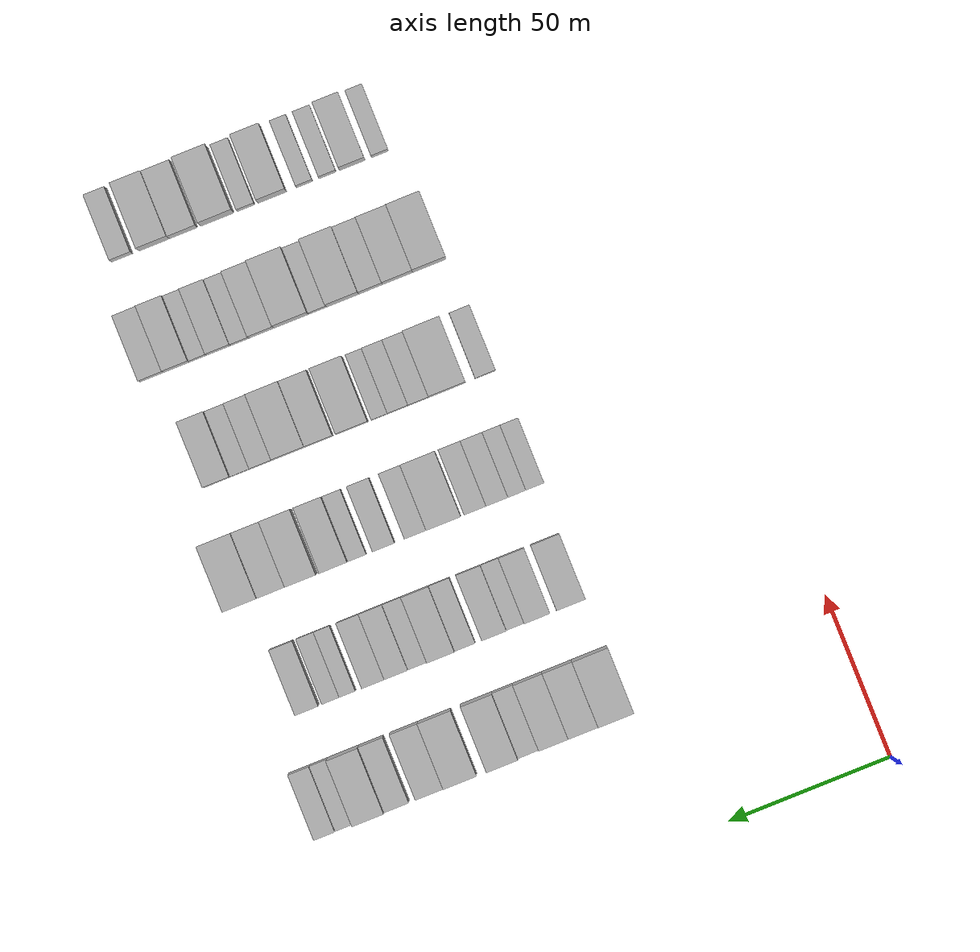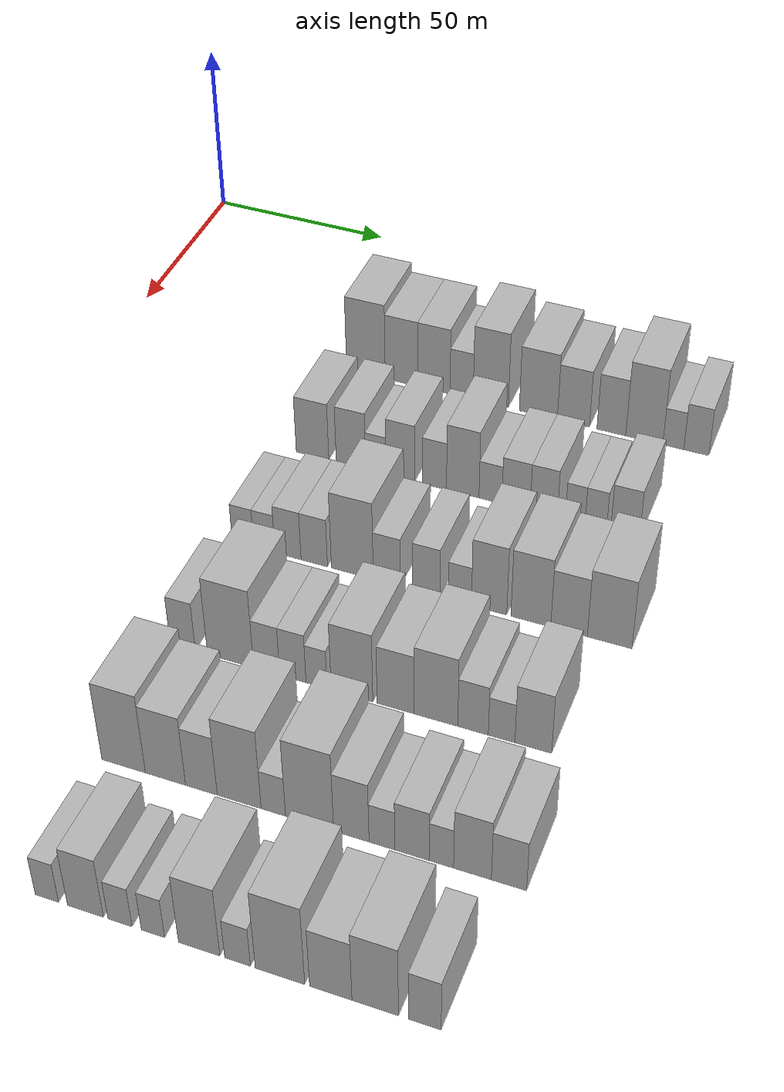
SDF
<sdf version="1.6">
 <world name="default">
  <model name="building_69">
   <static>1</static>
   <pose>50.0000 69.3415 0 0.000000 0.000000 0.000000</pose>
   <link name="link">
    <pose>0 0 12.00 0 0 0</pose>
    <collision name="collision"><geometry><box><size>20.0000 10.9557 24.0000</size></box></geometry></collision>
    <visual name="visual">
     <cast_shadows>0</cast_shadows>
     <geometry><box><size>20.0000 10.9557 24.0000</size></box></geometry>
     <material>
      <script>
       <uri>model://HANNAS_wall/materials/scripts</uri>
       <uri>model://HANNAS_wall/materials/textures</uri>
       <name>vrc/HANNAS_wall</name>
      </script>
     </material>
    </visual>
   </link>
  </model>
  <model name="building_70">
   <static>1</static>
   <pose>50.0000 79.3716 0 0.000000 0.000000 0.000000</pose>
   <link name="link">
    <pose>0 0 10.50 0 0 0</pose>
    <collision name="collision"><geometry><box><size>20.0000 9.1044 21.0000</size></box></geometry></collision>
    <visual name="visual">
     <cast_shadows>0</cast_shadows>
     <geometry><box><size>20.0000 9.1044 21.0000</size></box></geometry>
     <material>
      <script>
       <uri>model://HANNAS_wall/materials/scripts</uri>
       <uri>model://HANNAS_wall/materials/textures</uri>
       <name>vrc/HANNAS_wall</name>
      </script>
     </material>
    </visual>
   </link>
  </model>
  <model name="building_71">
   <static>1</static>
   <pose>50.0000 88.4283 0 0.000000 0.000000 0.000000</pose>
   <link name="link">
    <pose>0 0 10.50 0 0 0</pose>
    <collision name="collision"><geometry><box><size>20.0000 9.0091 21.0000</size></box></geometry></collision>
    <visual name="visual">
     <cast_shadows>0</cast_shadows>
     <geometry><box><size>20.0000 9.0091 21.0000</size></box></geometry>
     <material>
      <script>
       <uri>model://HANNAS_wall/materials/scripts</uri>
       <uri>model://HANNAS_wall/materials/textures</uri>
       <name>vrc/HANNAS_wall</name>
      </script>
     </material>
    </visual>
   </link>
  </model>
  <model name="building_72">
   <static>1</static>
   <pose>50.0000 96.1173 0 0.000000 0.000000 0.000000</pose>
   <link name="link">
    <pose>0 0 7.50 0 0 0</pose>
    <collision name="collision"><geometry><box><size>20.0000 6.3689 15.0000</size></box></geometry></collision>
    <visual name="visual">
     <cast_shadows>0</cast_shadows>
     <geometry><box><size>20.0000 6.3689 15.0000</size></box></geometry>
     <material>
      <script>
       <uri>model://HANNAS_wall/materials/scripts</uri>
       <uri>model://HANNAS_wall/materials/textures</uri>
       <name>vrc/HANNAS_wall</name>
      </script>
     </material>
    </visual>
   </link>
  </model>
  <model name="building_73">
   <static>1</static>
   <pose>50.0000 104.1100 0 0.000000 0.000000 0.000000</pose>
   <link name="link">
    <pose>0 0 12.00 0 0 0</pose>
    <collision name="collision"><geometry><box><size>20.0000 9.6165 24.0000</size></box></geometry></collision>
    <visual name="visual">
     <cast_shadows>0</cast_shadows>
     <geometry><box><size>20.0000 9.6165 24.0000</size></box></geometry>
     <material>
      <script>
       <uri>model://HANNAS_wall/materials/scripts</uri>
       <uri>model://HANNAS_wall/materials/textures</uri>
       <name>vrc/HANNAS_wall</name>
      </script>
     </material>
    </visual>
   </link>
  </model>
  <model name="building_74">
   <static>1</static>
   <pose>50.0000 117.0434 0 0.000000 0.000000 0.000000</pose>
   <link name="link">
    <pose>0 0 10.50 0 0 0</pose>
    <collision name="collision"><geometry><box><size>20.0000 10.2503 21.0000</size></box></geometry></collision>
    <visual name="visual">
     <cast_shadows>0</cast_shadows>
     <geometry><box><size>20.0000 10.2503 21.0000</size></box></geometry>
     <material>
      <script>
       <uri>model://HANNAS_wall/materials/scripts</uri>
       <uri>model://HANNAS_wall/materials/textures</uri>
       <name>vrc/HANNAS_wall</name>
      </script>
     </material>
    </visual>
   </link>
  </model>
  <model name="building_75">
   <static>1</static>
   <pose>50.0000 126.4468 0 0.000000 0.000000 0.000000</pose>
   <link name="link">
    <pose>0 0 9.00 0 0 0</pose>
    <collision name="collision"><geometry><box><size>20.0000 8.5566 18.0000</size></box></geometry></collision>
    <visual name="visual">
     <cast_shadows>0</cast_shadows>
     <geometry><box><size>20.0000 8.5566 18.0000</size></box></geometry>
     <material>
      <script>
       <uri>model://HANNAS_wall/materials/scripts</uri>
       <uri>model://HANNAS_wall/materials/textures</uri>
       <name>vrc/HANNAS_wall</name>
      </script>
     </material>
    </visual>
   </link>
  </model>
  <model name="building_76">
   <static>1</static>
   <pose>50.0000 136.5192 0 0.000000 0.000000 0.000000</pose>
   <link name="link">
    <pose>0 0 9.00 0 0 0</pose>
    <collision name="collision"><geometry><box><size>20.0000 7.5880 18.0000</size></box></geometry></collision>
    <visual name="visual">
     <cast_shadows>0</cast_shadows>
     <geometry><box><size>20.0000 7.5880 18.0000</size></box></geometry>
     <material>
      <script>
       <uri>model://HANNAS_wall/materials/scripts</uri>
       <uri>model://HANNAS_wall/materials/textures</uri>
       <name>vrc/HANNAS_wall</name>
      </script>
     </material>
    </visual>
   </link>
  </model>
  <model name="building_77">
   <static>1</static>
   <pose>50.0000 145.1539 0 0.000000 0.000000 0.000000</pose>
   <link name="link">
    <pose>0 0 12.00 0 0 0</pose>
    <collision name="collision"><geometry><box><size>20.0000 9.6815 24.0000</size></box></geometry></collision>
    <visual name="visual">
     <cast_shadows>0</cast_shadows>
     <geometry><box><size>20.0000 9.6815 24.0000</size></box></geometry>
     <material>
      <script>
       <uri>model://HANNAS_wall/materials/scripts</uri>
       <uri>model://HANNAS_wall/materials/textures</uri>
       <name>vrc/HANNAS_wall</name>
      </script>
     </material>
    </visual>
   </link>
  </model>
  <model name="building_78">
   <static>1</static>
   <pose>50.0000 152.7154 0 0.000000 0.000000 0.000000</pose>
   <link name="link">
    <pose>0 0 6.00 0 0 0</pose>
    <collision name="collision"><geometry><box><size>20.0000 5.4415 12.0000</size></box></geometry></collision>
    <visual name="visual">
     <cast_shadows>0</cast_shadows>
     <geometry><box><size>20.0000 5.4415 12.0000</size></box></geometry>
     <material>
      <script>
       <uri>model://HANNAS_wall/materials/scripts</uri>
       <uri>model://HANNAS_wall/materials/textures</uri>
       <name>vrc/HANNAS_wall</name>
      </script>
     </material>
    </visual>
   </link>
  </model>
  <model name="building_79">
   <static>1</static>
   <pose>50.0000 158.6669 0 0.000000 0.000000 0.000000</pose>
   <link name="link">
    <pose>0 0 7.50 0 0 0</pose>
    <collision name="collision"><geometry><box><size>20.0000 6.4617 15.0000</size></box></geometry></collision>
    <visual name="visual">
     <cast_shadows>0</cast_shadows>
     <geometry><box><size>20.0000 6.4617 15.0000</size></box></geometry>
     <material>
      <script>
       <uri>model://HANNAS_wall/materials/scripts</uri>
       <uri>model://HANNAS_wall/materials/textures</uri>
       <name>vrc/HANNAS_wall</name>
      </script>
     </material>
    </visual>
   </link>
  </model>
  <model name="building_188">
   <static>1</static>
   <pose>85.0000 68.9598 0 0.000000 0.000000 0.000000</pose>
   <link name="link">
    <pose>0 0 9.00 0 0 0</pose>
    <collision name="collision"><geometry><box><size>20.0000 8.8390 18.0000</size></box></geometry></collision>
    <visual name="visual">
     <cast_shadows>0</cast_shadows>
     <geometry><box><size>20.0000 8.8390 18.0000</size></box></geometry>
     <material>
      <script>
       <uri>model://HANNAS_wall/materials/scripts</uri>
       <uri>model://HANNAS_wall/materials/textures</uri>
       <name>vrc/HANNAS_wall</name>
      </script>
     </material>
    </visual>
   </link>
  </model>
  <model name="building_189">
   <static>1</static>
   <pose>85.0000 79.3357 0 0.000000 0.000000 0.000000</pose>
   <link name="link">
    <pose>0 0 9.00 0 0 0</pose>
    <collision name="collision"><geometry><box><size>20.0000 7.9128 18.0000</size></box></geometry></collision>
    <visual name="visual">
     <cast_shadows>0</cast_shadows>
     <geometry><box><size>20.0000 7.9128 18.0000</size></box></geometry>
     <material>
      <script>
       <uri>model://HANNAS_wall/materials/scripts</uri>
       <uri>model://HANNAS_wall/materials/textures</uri>
       <name>vrc/HANNAS_wall</name>
      </script>
     </material>
    </visual>
   </link>
  </model>
  <model name="building_190">
   <static>1</static>
   <pose>85.0000 86.0257 0 0.000000 0.000000 0.000000</pose>
   <link name="link">
    <pose>0 0 6.00 0 0 0</pose>
    <collision name="collision"><geometry><box><size>20.0000 5.4672 12.0000</size></box></geometry></collision>
    <visual name="visual">
     <cast_shadows>0</cast_shadows>
     <geometry><box><size>20.0000 5.4672 12.0000</size></box></geometry>
     <material>
      <script>
       <uri>model://HANNAS_wall/materials/scripts</uri>
       <uri>model://HANNAS_wall/materials/textures</uri>
       <name>vrc/HANNAS_wall</name>
      </script>
     </material>
    </visual>
   </link>
  </model>
  <model name="building_191">
   <static>1</static>
   <pose>85.0000 92.5351 0 0.000000 0.000000 0.000000</pose>
   <link name="link">
    <pose>0 0 9.00 0 0 0</pose>
    <collision name="collision"><geometry><box><size>20.0000 7.5516 18.0000</size></box></geometry></collision>
    <visual name="visual">
     <cast_shadows>0</cast_shadows>
     <geometry><box><size>20.0000 7.5516 18.0000</size></box></geometry>
     <material>
      <script>
       <uri>model://HANNAS_wall/materials/scripts</uri>
       <uri>model://HANNAS_wall/materials/textures</uri>
       <name>vrc/HANNAS_wall</name>
      </script>
     </material>
    </visual>
   </link>
  </model>
  <model name="building_192">
   <static>1</static>
   <pose>85.0000 101.4828 0 0.000000 0.000000 0.000000</pose>
   <link name="link">
    <pose>0 0 7.50 0 0 0</pose>
    <collision name="collision"><geometry><box><size>20.0000 6.3438 15.0000</size></box></geometry></collision>
    <visual name="visual">
     <cast_shadows>0</cast_shadows>
     <geometry><box><size>20.0000 6.3438 15.0000</size></box></geometry>
     <material>
      <script>
       <uri>model://HANNAS_wall/materials/scripts</uri>
       <uri>model://HANNAS_wall/materials/textures</uri>
       <name>vrc/HANNAS_wall</name>
      </script>
     </material>
    </visual>
   </link>
  </model>
  <model name="building_193">
   <static>1</static>
   <pose>85.0000 108.8783 0 0.000000 0.000000 0.000000</pose>
   <link name="link">
    <pose>0 0 10.50 0 0 0</pose>
    <collision name="collision"><geometry><box><size>20.0000 8.4472 21.0000</size></box></geometry></collision>
    <visual name="visual">
     <cast_shadows>0</cast_shadows>
     <geometry><box><size>20.0000 8.4472 21.0000</size></box></geometry>
     <material>
      <script>
       <uri>model://HANNAS_wall/materials/scripts</uri>
       <uri>model://HANNAS_wall/materials/textures</uri>
       <name>vrc/HANNAS_wall</name>
      </script>
     </material>
    </visual>
   </link>
  </model>
  <model name="building_194">
   <static>1</static>
   <pose>85.0000 116.0498 0 0.000000 0.000000 0.000000</pose>
   <link name="link">
    <pose>0 0 6.00 0 0 0</pose>
    <collision name="collision"><geometry><box><size>20.0000 5.8960 12.0000</size></box></geometry></collision>
    <visual name="visual">
     <cast_shadows>0</cast_shadows>
     <geometry><box><size>20.0000 5.8960 12.0000</size></box></geometry>
     <material>
      <script>
       <uri>model://HANNAS_wall/materials/scripts</uri>
       <uri>model://HANNAS_wall/materials/textures</uri>
       <name>vrc/HANNAS_wall</name>
      </script>
     </material>
    </visual>
   </link>
  </model>
  <model name="building_195">
   <static>1</static>
   <pose>85.0000 122.6215 0 0.000000 0.000000 0.000000</pose>
   <link name="link">
    <pose>0 0 7.50 0 0 0</pose>
    <collision name="collision"><geometry><box><size>20.0000 7.2473 15.0000</size></box></geometry></collision>
    <visual name="visual">
     <cast_shadows>0</cast_shadows>
     <geometry><box><size>20.0000 7.2473 15.0000</size></box></geometry>
     <material>
      <script>
       <uri>model://HANNAS_wall/materials/scripts</uri>
       <uri>model://HANNAS_wall/materials/textures</uri>
       <name>vrc/HANNAS_wall</name>
      </script>
     </material>
    </visual>
   </link>
  </model>
  <model name="building_196">
   <static>1</static>
   <pose>85.0000 129.6965 0 0.000000 0.000000 0.000000</pose>
   <link name="link">
    <pose>0 0 7.50 0 0 0</pose>
    <collision name="collision"><geometry><box><size>20.0000 6.9028 15.0000</size></box></geometry></collision>
    <visual name="visual">
     <cast_shadows>0</cast_shadows>
     <geometry><box><size>20.0000 6.9028 15.0000</size></box></geometry>
     <material>
      <script>
       <uri>model://HANNAS_wall/materials/scripts</uri>
       <uri>model://HANNAS_wall/materials/textures</uri>
       <name>vrc/HANNAS_wall</name>
      </script>
     </material>
    </visual>
   </link>
  </model>
  <model name="building_197">
   <static>1</static>
   <pose>85.0000 137.6259 0 0.000000 0.000000 0.000000</pose>
   <link name="link">
    <pose>0 0 6.00 0 0 0</pose>
    <collision name="collision"><geometry><box><size>20.0000 4.9561 12.0000</size></box></geometry></collision>
    <visual name="visual">
     <cast_shadows>0</cast_shadows>
     <geometry><box><size>20.0000 4.9561 12.0000</size></box></geometry>
     <material>
      <script>
       <uri>model://HANNAS_wall/materials/scripts</uri>
       <uri>model://HANNAS_wall/materials/textures</uri>
       <name>vrc/HANNAS_wall</name>
      </script>
     </material>
    </visual>
   </link>
  </model>
  <model name="building_198">
   <static>1</static>
   <pose>85.0000 142.8022 0 0.000000 0.000000 0.000000</pose>
   <link name="link">
    <pose>0 0 6.00 0 0 0</pose>
    <collision name="collision"><geometry><box><size>20.0000 5.3965 12.0000</size></box></geometry></collision>
    <visual name="visual">
     <cast_shadows>0</cast_shadows>
     <geometry><box><size>20.0000 5.3965 12.0000</size></box></geometry>
     <material>
      <script>
       <uri>model://HANNAS_wall/materials/scripts</uri>
       <uri>model://HANNAS_wall/materials/textures</uri>
       <name>vrc/HANNAS_wall</name>
      </script>
     </material>
    </visual>
   </link>
  </model>
  <model name="building_199">
   <static>1</static>
   <pose>85.0000 150.0899 0 0.000000 0.000000 0.000000</pose>
   <link name="link">
    <pose>0 0 7.50 0 0 0</pose>
    <collision name="collision"><geometry><box><size>20.0000 7.1789 15.0000</size></box></geometry></collision>
    <visual name="visual">
     <cast_shadows>0</cast_shadows>
     <geometry><box><size>20.0000 7.1789 15.0000</size></box></geometry>
     <material>
      <script>
       <uri>model://HANNAS_wall/materials/scripts</uri>
       <uri>model://HANNAS_wall/materials/textures</uri>
       <name>vrc/HANNAS_wall</name>
      </script>
     </material>
    </visual>
   </link>
  </model>
  <model name="building_320">
   <static>1</static>
   <pose>120.0000 65.9033 0 0.000000 0.000000 0.000000</pose>
   <link name="link">
    <pose>0 0 6.00 0 0 0</pose>
    <collision name="collision"><geometry><box><size>20.0000 5.6047 12.0000</size></box></geometry></collision>
    <visual name="visual">
     <cast_shadows>0</cast_shadows>
     <geometry><box><size>20.0000 5.6047 12.0000</size></box></geometry>
     <material>
      <script>
       <uri>model://HANNAS_wall/materials/scripts</uri>
       <uri>model://HANNAS_wall/materials/textures</uri>
       <name>vrc/HANNAS_wall</name>
      </script>
     </material>
    </visual>
   </link>
  </model>
  <model name="building_321">
   <static>1</static>
   <pose>120.0000 71.4473 0 0.000000 0.000000 0.000000</pose>
   <link name="link">
    <pose>0 0 6.00 0 0 0</pose>
    <collision name="collision"><geometry><box><size>20.0000 5.4833 12.0000</size></box></geometry></collision>
    <visual name="visual">
     <cast_shadows>0</cast_shadows>
     <geometry><box><size>20.0000 5.4833 12.0000</size></box></geometry>
     <material>
      <script>
       <uri>model://HANNAS_wall/materials/scripts</uri>
       <uri>model://HANNAS_wall/materials/textures</uri>
       <name>vrc/HANNAS_wall</name>
      </script>
     </material>
    </visual>
   </link>
  </model>
  <model name="building_322">
   <static>1</static>
   <pose>120.0000 77.5515 0 0.000000 0.000000 0.000000</pose>
   <link name="link">
    <pose>0 0 7.50 0 0 0</pose>
    <collision name="collision"><geometry><box><size>20.0000 6.7250 15.0000</size></box></geometry></collision>
    <visual name="visual">
     <cast_shadows>0</cast_shadows>
     <geometry><box><size>20.0000 6.7250 15.0000</size></box></geometry>
     <material>
      <script>
       <uri>model://HANNAS_wall/materials/scripts</uri>
       <uri>model://HANNAS_wall/materials/textures</uri>
       <name>vrc/HANNAS_wall</name>
      </script>
     </material>
    </visual>
   </link>
  </model>
  <model name="building_323">
   <static>1</static>
   <pose>120.0000 84.2907 0 0.000000 0.000000 0.000000</pose>
   <link name="link">
    <pose>0 0 7.50 0 0 0</pose>
    <collision name="collision"><geometry><box><size>20.0000 6.7534 15.0000</size></box></geometry></collision>
    <visual name="visual">
     <cast_shadows>0</cast_shadows>
     <geometry><box><size>20.0000 6.7534 15.0000</size></box></geometry>
     <material>
      <script>
       <uri>model://HANNAS_wall/materials/scripts</uri>
       <uri>model://HANNAS_wall/materials/textures</uri>
       <name>vrc/HANNAS_wall</name>
      </script>
     </material>
    </visual>
   </link>
  </model>
  <model name="building_324">
   <static>1</static>
   <pose>120.0000 93.9560 0 0.000000 0.000000 0.000000</pose>
   <link name="link">
    <pose>0 0 12.00 0 0 0</pose>
    <collision name="collision"><geometry><box><size>20.0000 10.5772 24.0000</size></box></geometry></collision>
    <visual name="visual">
     <cast_shadows>0</cast_shadows>
     <geometry><box><size>20.0000 10.5772 24.0000</size></box></geometry>
     <material>
      <script>
       <uri>model://HANNAS_wall/materials/scripts</uri>
       <uri>model://HANNAS_wall/materials/textures</uri>
       <name>vrc/HANNAS_wall</name>
      </script>
     </material>
    </visual>
   </link>
  </model>
  <model name="building_325">
   <static>1</static>
   <pose>120.0000 102.6236 0 0.000000 0.000000 0.000000</pose>
   <link name="link">
    <pose>0 0 7.50 0 0 0</pose>
    <collision name="collision"><geometry><box><size>20.0000 6.7579 15.0000</size></box></geometry></collision>
    <visual name="visual">
     <cast_shadows>0</cast_shadows>
     <geometry><box><size>20.0000 6.7579 15.0000</size></box></geometry>
     <material>
      <script>
       <uri>model://HANNAS_wall/materials/scripts</uri>
       <uri>model://HANNAS_wall/materials/textures</uri>
       <name>vrc/HANNAS_wall</name>
      </script>
     </material>
    </visual>
   </link>
  </model>
  <model name="building_326">
   <static>1</static>
   <pose>120.0000 112.3995 0 0.000000 0.000000 0.000000</pose>
   <link name="link">
    <pose>0 0 7.50 0 0 0</pose>
    <collision name="collision"><geometry><box><size>20.0000 6.7940 15.0000</size></box></geometry></collision>
    <visual name="visual">
     <cast_shadows>0</cast_shadows>
     <geometry><box><size>20.0000 6.7940 15.0000</size></box></geometry>
     <material>
      <script>
       <uri>model://HANNAS_wall/materials/scripts</uri>
       <uri>model://HANNAS_wall/materials/textures</uri>
       <name>vrc/HANNAS_wall</name>
      </script>
     </material>
    </visual>
   </link>
  </model>
  <model name="building_327">
   <static>1</static>
   <pose>120.0000 120.6309 0 0.000000 0.000000 0.000000</pose>
   <link name="link">
    <pose>0 0 6.00 0 0 0</pose>
    <collision name="collision"><geometry><box><size>20.0000 5.6687 12.0000</size></box></geometry></collision>
    <visual name="visual">
     <cast_shadows>0</cast_shadows>
     <geometry><box><size>20.0000 5.6687 12.0000</size></box></geometry>
     <material>
      <script>
       <uri>model://HANNAS_wall/materials/scripts</uri>
       <uri>model://HANNAS_wall/materials/textures</uri>
       <name>vrc/HANNAS_wall</name>
      </script>
     </material>
    </visual>
   </link>
  </model>
  <model name="building_328">
   <static>1</static>
   <pose>120.0000 127.7406 0 0.000000 0.000000 0.000000</pose>
   <link name="link">
    <pose>0 0 10.50 0 0 0</pose>
    <collision name="collision"><geometry><box><size>20.0000 8.5508 21.0000</size></box></geometry></collision>
    <visual name="visual">
     <cast_shadows>0</cast_shadows>
     <geometry><box><size>20.0000 8.5508 21.0000</size></box></geometry>
     <material>
      <script>
       <uri>model://HANNAS_wall/materials/scripts</uri>
       <uri>model://HANNAS_wall/materials/textures</uri>
       <name>vrc/HANNAS_wall</name>
      </script>
     </material>
    </visual>
   </link>
  </model>
  <model name="building_329">
   <static>1</static>
   <pose>120.0000 137.7846 0 0.000000 0.000000 0.000000</pose>
   <link name="link">
    <pose>0 0 10.50 0 0 0</pose>
    <collision name="collision"><geometry><box><size>20.0000 9.5372 21.0000</size></box></geometry></collision>
    <visual name="visual">
     <cast_shadows>0</cast_shadows>
     <geometry><box><size>20.0000 9.5372 21.0000</size></box></geometry>
     <material>
      <script>
       <uri>model://HANNAS_wall/materials/scripts</uri>
       <uri>model://HANNAS_wall/materials/textures</uri>
       <name>vrc/HANNAS_wall</name>
      </script>
     </material>
    </visual>
   </link>
  </model>
  <model name="building_330">
   <static>1</static>
   <pose>120.0000 146.8764 0 0.000000 0.000000 0.000000</pose>
   <link name="link">
    <pose>0 0 9.00 0 0 0</pose>
    <collision name="collision"><geometry><box><size>20.0000 8.6464 18.0000</size></box></geometry></collision>
    <visual name="visual">
     <cast_shadows>0</cast_shadows>
     <geometry><box><size>20.0000 8.6464 18.0000</size></box></geometry>
     <material>
      <script>
       <uri>model://HANNAS_wall/materials/scripts</uri>
       <uri>model://HANNAS_wall/materials/textures</uri>
       <name>vrc/HANNAS_wall</name>
      </script>
     </material>
    </visual>
   </link>
  </model>
  <model name="building_331">
   <static>1</static>
   <pose>120.0000 156.4136 0 0.000000 0.000000 0.000000</pose>
   <link name="link">
    <pose>0 0 10.50 0 0 0</pose>
    <collision name="collision"><geometry><box><size>20.0000 10.4281 21.0000</size></box></geometry></collision>
    <visual name="visual">
     <cast_shadows>0</cast_shadows>
     <geometry><box><size>20.0000 10.4281 21.0000</size></box></geometry>
     <material>
      <script>
       <uri>model://HANNAS_wall/materials/scripts</uri>
       <uri>model://HANNAS_wall/materials/textures</uri>
       <name>vrc/HANNAS_wall</name>
      </script>
     </material>
    </visual>
   </link>
  </model>
  <model name="building_438">
   <static>1</static>
   <pose>155.0000 67.1264 0 0.000000 0.000000 0.000000</pose>
   <link name="link">
    <pose>0 0 7.50 0 0 0</pose>
    <collision name="collision"><geometry><box><size>20.0000 6.2338 15.0000</size></box></geometry></collision>
    <visual name="visual">
     <cast_shadows>0</cast_shadows>
     <geometry><box><size>20.0000 6.2338 15.0000</size></box></geometry>
     <material>
      <script>
       <uri>model://HANNAS_wall/materials/scripts</uri>
       <uri>model://HANNAS_wall/materials/textures</uri>
       <name>vrc/HANNAS_wall</name>
      </script>
     </material>
    </visual>
   </link>
  </model>
  <model name="building_439">
   <static>1</static>
   <pose>155.0000 78.8919 0 0.000000 0.000000 0.000000</pose>
   <link name="link">
    <pose>0 0 12.00 0 0 0</pose>
    <collision name="collision"><geometry><box><size>20.0000 11.2971 24.0000</size></box></geometry></collision>
    <visual name="visual">
     <cast_shadows>0</cast_shadows>
     <geometry><box><size>20.0000 11.2971 24.0000</size></box></geometry>
     <material>
      <script>
       <uri>model://HANNAS_wall/materials/scripts</uri>
       <uri>model://HANNAS_wall/materials/textures</uri>
       <name>vrc/HANNAS_wall</name>
      </script>
     </material>
    </visual>
   </link>
  </model>
  <model name="building_440">
   <static>1</static>
   <pose>155.0000 87.7095 0 0.000000 0.000000 0.000000</pose>
   <link name="link">
    <pose>0 0 7.50 0 0 0</pose>
    <collision name="collision"><geometry><box><size>20.0000 6.3382 15.0000</size></box></geometry></collision>
    <visual name="visual">
     <cast_shadows>0</cast_shadows>
     <geometry><box><size>20.0000 6.3382 15.0000</size></box></geometry>
     <material>
      <script>
       <uri>model://HANNAS_wall/materials/scripts</uri>
       <uri>model://HANNAS_wall/materials/textures</uri>
       <name>vrc/HANNAS_wall</name>
      </script>
     </material>
    </visual>
   </link>
  </model>
  <model name="building_441">
   <static>1</static>
   <pose>155.0000 94.0341 0 0.000000 0.000000 0.000000</pose>
   <link name="link">
    <pose>0 0 7.50 0 0 0</pose>
    <collision name="collision"><geometry><box><size>20.0000 6.3111 15.0000</size></box></geometry></collision>
    <visual name="visual">
     <cast_shadows>0</cast_shadows>
     <geometry><box><size>20.0000 6.3111 15.0000</size></box></geometry>
     <material>
      <script>
       <uri>model://HANNAS_wall/materials/scripts</uri>
       <uri>model://HANNAS_wall/materials/textures</uri>
       <name>vrc/HANNAS_wall</name>
      </script>
     </material>
    </visual>
   </link>
  </model>
  <model name="building_442">
   <static>1</static>
   <pose>155.0000 99.6969 0 0.000000 0.000000 0.000000</pose>
   <link name="link">
    <pose>0 0 6.00 0 0 0</pose>
    <collision name="collision"><geometry><box><size>20.0000 5.0145 12.0000</size></box></geometry></collision>
    <visual name="visual">
     <cast_shadows>0</cast_shadows>
     <geometry><box><size>20.0000 5.0145 12.0000</size></box></geometry>
     <material>
      <script>
       <uri>model://HANNAS_wall/materials/scripts</uri>
       <uri>model://HANNAS_wall/materials/textures</uri>
       <name>vrc/HANNAS_wall</name>
      </script>
     </material>
    </visual>
   </link>
  </model>
  <model name="building_443">
   <static>1</static>
   <pose>155.0000 108.1194 0 0.000000 0.000000 0.000000</pose>
   <link name="link">
    <pose>0 0 10.50 0 0 0</pose>
    <collision name="collision"><geometry><box><size>20.0000 9.8305 21.0000</size></box></geometry></collision>
    <visual name="visual">
     <cast_shadows>0</cast_shadows>
     <geometry><box><size>20.0000 9.8305 21.0000</size></box></geometry>
     <material>
      <script>
       <uri>model://HANNAS_wall/materials/scripts</uri>
       <uri>model://HANNAS_wall/materials/textures</uri>
       <name>vrc/HANNAS_wall</name>
      </script>
     </material>
    </visual>
   </link>
  </model>
  <model name="building_444">
   <static>1</static>
   <pose>155.0000 118.3511 0 0.000000 0.000000 0.000000</pose>
   <link name="link">
    <pose>0 0 9.00 0 0 0</pose>
    <collision name="collision"><geometry><box><size>20.0000 8.6330 18.0000</size></box></geometry></collision>
    <visual name="visual">
     <cast_shadows>0</cast_shadows>
     <geometry><box><size>20.0000 8.6330 18.0000</size></box></geometry>
     <material>
      <script>
       <uri>model://HANNAS_wall/materials/scripts</uri>
       <uri>model://HANNAS_wall/materials/textures</uri>
       <name>vrc/HANNAS_wall</name>
      </script>
     </material>
    </visual>
   </link>
  </model>
  <model name="building_445">
   <static>1</static>
   <pose>155.0000 127.6790 0 0.000000 0.000000 0.000000</pose>
   <link name="link">
    <pose>0 0 10.50 0 0 0</pose>
    <collision name="collision"><geometry><box><size>20.0000 10.0228 21.0000</size></box></geometry></collision>
    <visual name="visual">
     <cast_shadows>0</cast_shadows>
     <geometry><box><size>20.0000 10.0228 21.0000</size></box></geometry>
     <material>
      <script>
       <uri>model://HANNAS_wall/materials/scripts</uri>
       <uri>model://HANNAS_wall/materials/textures</uri>
       <name>vrc/HANNAS_wall</name>
      </script>
     </material>
    </visual>
   </link>
  </model>
  <model name="building_446">
   <static>1</static>
   <pose>155.0000 136.1555 0 0.000000 0.000000 0.000000</pose>
   <link name="link">
    <pose>0 0 7.50 0 0 0</pose>
    <collision name="collision"><geometry><box><size>20.0000 6.9302 15.0000</size></box></geometry></collision>
    <visual name="visual">
     <cast_shadows>0</cast_shadows>
     <geometry><box><size>20.0000 6.9302 15.0000</size></box></geometry>
     <material>
      <script>
       <uri>model://HANNAS_wall/materials/scripts</uri>
       <uri>model://HANNAS_wall/materials/textures</uri>
       <name>vrc/HANNAS_wall</name>
      </script>
     </material>
    </visual>
   </link>
  </model>
  <model name="building_447">
   <static>1</static>
   <pose>155.0000 142.6181 0 0.000000 0.000000 0.000000</pose>
   <link name="link">
    <pose>0 0 6.00 0 0 0</pose>
    <collision name="collision"><geometry><box><size>20.0000 5.9949 12.0000</size></box></geometry></collision>
    <visual name="visual">
     <cast_shadows>0</cast_shadows>
     <geometry><box><size>20.0000 5.9949 12.0000</size></box></geometry>
     <material>
      <script>
       <uri>model://HANNAS_wall/materials/scripts</uri>
       <uri>model://HANNAS_wall/materials/textures</uri>
       <name>vrc/HANNAS_wall</name>
      </script>
     </material>
    </visual>
   </link>
  </model>
  <model name="building_448">
   <static>1</static>
   <pose>155.0000 149.7255 0 0.000000 0.000000 0.000000</pose>
   <link name="link">
    <pose>0 0 9.00 0 0 0</pose>
    <collision name="collision"><geometry><box><size>20.0000 8.2200 18.0000</size></box></geometry></collision>
    <visual name="visual">
     <cast_shadows>0</cast_shadows>
     <geometry><box><size>20.0000 8.2200 18.0000</size></box></geometry>
     <material>
      <script>
       <uri>model://HANNAS_wall/materials/scripts</uri>
       <uri>model://HANNAS_wall/materials/textures</uri>
       <name>vrc/HANNAS_wall</name>
      </script>
     </material>
    </visual>
   </link>
  </model>
  <model name="building_564">
   <static>1</static>
   <pose>190.0000 70.3885 0 0.000000 0.000000 0.000000</pose>
   <link name="link">
    <pose>0 0 12.00 0 0 0</pose>
    <collision name="collision"><geometry><box><size>20.0000 10.2522 24.0000</size></box></geometry></collision>
    <visual name="visual">
     <cast_shadows>0</cast_shadows>
     <geometry><box><size>20.0000 10.2522 24.0000</size></box></geometry>
     <material>
      <script>
       <uri>model://HANNAS_wall/materials/scripts</uri>
       <uri>model://HANNAS_wall/materials/textures</uri>
       <name>vrc/HANNAS_wall</name>
      </script>
     </material>
    </visual>
   </link>
  </model>
  <model name="building_565">
   <static>1</static>
   <pose>190.0000 80.1894 0 0.000000 0.000000 0.000000</pose>
   <link name="link">
    <pose>0 0 10.50 0 0 0</pose>
    <collision name="collision"><geometry><box><size>20.0000 9.3496 21.0000</size></box></geometry></collision>
    <visual name="visual">
     <cast_shadows>0</cast_shadows>
     <geometry><box><size>20.0000 9.3496 21.0000</size></box></geometry>
     <material>
      <script>
       <uri>model://HANNAS_wall/materials/scripts</uri>
       <uri>model://HANNAS_wall/materials/textures</uri>
       <name>vrc/HANNAS_wall</name>
      </script>
     </material>
    </visual>
   </link>
  </model>
  <model name="building_566">
   <static>1</static>
   <pose>190.0000 88.5115 0 0.000000 0.000000 0.000000</pose>
   <link name="link">
    <pose>0 0 9.00 0 0 0</pose>
    <collision name="collision"><geometry><box><size>20.0000 7.2944 18.0000</size></box></geometry></collision>
    <visual name="visual">
     <cast_shadows>0</cast_shadows>
     <geometry><box><size>20.0000 7.2944 18.0000</size></box></geometry>
     <material>
      <script>
       <uri>model://HANNAS_wall/materials/scripts</uri>
       <uri>model://HANNAS_wall/materials/textures</uri>
       <name>vrc/HANNAS_wall</name>
      </script>
     </material>
    </visual>
   </link>
  </model>
  <model name="building_567">
   <static>1</static>
   <pose>190.0000 97.1524 0 0.000000 0.000000 0.000000</pose>
   <link name="link">
    <pose>0 0 12.00 0 0 0</pose>
    <collision name="collision"><geometry><box><size>20.0000 9.9874 24.0000</size></box></geometry></collision>
    <visual name="visual">
     <cast_shadows>0</cast_shadows>
     <geometry><box><size>20.0000 9.9874 24.0000</size></box></geometry>
     <material>
      <script>
       <uri>model://HANNAS_wall/materials/scripts</uri>
       <uri>model://HANNAS_wall/materials/textures</uri>
       <name>vrc/HANNAS_wall</name>
      </script>
     </material>
    </visual>
   </link>
  </model>
  <model name="building_568">
   <static>1</static>
   <pose>190.0000 104.8913 0 0.000000 0.000000 0.000000</pose>
   <link name="link">
    <pose>0 0 6.00 0 0 0</pose>
    <collision name="collision"><geometry><box><size>20.0000 5.4905 12.0000</size></box></geometry></collision>
    <visual name="visual">
     <cast_shadows>0</cast_shadows>
     <geometry><box><size>20.0000 5.4905 12.0000</size></box></geometry>
     <material>
      <script>
       <uri>model://HANNAS_wall/materials/scripts</uri>
       <uri>model://HANNAS_wall/materials/textures</uri>
       <name>vrc/HANNAS_wall</name>
      </script>
     </material>
    </visual>
   </link>
  </model>
  <model name="building_569">
   <static>1</static>
   <pose>190.0000 112.9837 0 0.000000 0.000000 0.000000</pose>
   <link name="link">
    <pose>0 0 12.00 0 0 0</pose>
    <collision name="collision"><geometry><box><size>20.0000 10.6942 24.0000</size></box></geometry></collision>
    <visual name="visual">
     <cast_shadows>0</cast_shadows>
     <geometry><box><size>20.0000 10.6942 24.0000</size></box></geometry>
     <material>
      <script>
       <uri>model://HANNAS_wall/materials/scripts</uri>
       <uri>model://HANNAS_wall/materials/textures</uri>
       <name>vrc/HANNAS_wall</name>
      </script>
     </material>
    </visual>
   </link>
  </model>
  <model name="building_570">
   <static>1</static>
   <pose>190.0000 122.2152 0 0.000000 0.000000 0.000000</pose>
   <link name="link">
    <pose>0 0 9.00 0 0 0</pose>
    <collision name="collision"><geometry><box><size>20.0000 7.7688 18.0000</size></box></geometry></collision>
    <visual name="visual">
     <cast_shadows>0</cast_shadows>
     <geometry><box><size>20.0000 7.7688 18.0000</size></box></geometry>
     <material>
      <script>
       <uri>model://HANNAS_wall/materials/scripts</uri>
       <uri>model://HANNAS_wall/materials/textures</uri>
       <name>vrc/HANNAS_wall</name>
      </script>
     </material>
    </visual>
   </link>
  </model>
  <model name="building_571">
   <static>1</static>
   <pose>190.0000 128.9058 0 0.000000 0.000000 0.000000</pose>
   <link name="link">
    <pose>0 0 6.00 0 0 0</pose>
    <collision name="collision"><geometry><box><size>20.0000 5.6125 12.0000</size></box></geometry></collision>
    <visual name="visual">
     <cast_shadows>0</cast_shadows>
     <geometry><box><size>20.0000 5.6125 12.0000</size></box></geometry>
     <material>
      <script>
       <uri>model://HANNAS_wall/materials/scripts</uri>
       <uri>model://HANNAS_wall/materials/textures</uri>
       <name>vrc/HANNAS_wall</name>
      </script>
     </material>
    </visual>
   </link>
  </model>
  <model name="building_572">
   <static>1</static>
   <pose>190.0000 135.4426 0 0.000000 0.000000 0.000000</pose>
   <link name="link">
    <pose>0 0 7.50 0 0 0</pose>
    <collision name="collision"><geometry><box><size>20.0000 7.4611 15.0000</size></box></geometry></collision>
    <visual name="visual">
     <cast_shadows>0</cast_shadows>
     <geometry><box><size>20.0000 7.4611 15.0000</size></box></geometry>
     <material>
      <script>
       <uri>model://HANNAS_wall/materials/scripts</uri>
       <uri>model://HANNAS_wall/materials/textures</uri>
       <name>vrc/HANNAS_wall</name>
      </script>
     </material>
    </visual>
   </link>
  </model>
  <model name="building_573">
   <static>1</static>
   <pose>190.0000 141.7530 0 0.000000 0.000000 0.000000</pose>
   <link name="link">
    <pose>0 0 6.00 0 0 0</pose>
    <collision name="collision"><geometry><box><size>20.0000 5.1597 12.0000</size></box></geometry></collision>
    <visual name="visual">
     <cast_shadows>0</cast_shadows>
     <geometry><box><size>20.0000 5.1597 12.0000</size></box></geometry>
     <material>
      <script>
       <uri>model://HANNAS_wall/materials/scripts</uri>
       <uri>model://HANNAS_wall/materials/textures</uri>
       <name>vrc/HANNAS_wall</name>
      </script>
     </material>
    </visual>
   </link>
  </model>
  <model name="building_574">
   <static>1</static>
   <pose>190.0000 148.3217 0 0.000000 0.000000 0.000000</pose>
   <link name="link">
    <pose>0 0 9.00 0 0 0</pose>
    <collision name="collision"><geometry><box><size>20.0000 7.9777 18.0000</size></box></geometry></collision>
    <visual name="visual">
     <cast_shadows>0</cast_shadows>
     <geometry><box><size>20.0000 7.9777 18.0000</size></box></geometry>
     <material>
      <script>
       <uri>model://HANNAS_wall/materials/scripts</uri>
       <uri>model://HANNAS_wall/materials/textures</uri>
       <name>vrc/HANNAS_wall</name>
      </script>
     </material>
    </visual>
   </link>
  </model>
  <model name="building_575">
   <static>1</static>
   <pose>190.0000 156.0055 0 0.000000 0.000000 0.000000</pose>
   <link name="link">
    <pose>0 0 7.50 0 0 0</pose>
    <collision name="collision"><geometry><box><size>20.0000 7.3899 15.0000</size></box></geometry></collision>
    <visual name="visual">
     <cast_shadows>0</cast_shadows>
     <geometry><box><size>20.0000 7.3899 15.0000</size></box></geometry>
     <material>
      <script>
       <uri>model://HANNAS_wall/materials/scripts</uri>
       <uri>model://HANNAS_wall/materials/textures</uri>
       <name>vrc/HANNAS_wall</name>
      </script>
     </material>
    </visual>
   </link>
  </model>
  <model name="building_690">
   <static>1</static>
   <pose>225.0000 71.5930 0 0.000000 0.000000 0.000000</pose>
   <link name="link">
    <pose>0 0 6.00 0 0 0</pose>
    <collision name="collision"><geometry><box><size>20.0000 5.2056 12.0000</size></box></geometry></collision>
    <visual name="visual">
     <cast_shadows>0</cast_shadows>
     <geometry><box><size>20.0000 5.2056 12.0000</size></box></geometry>
     <material>
      <script>
       <uri>model://HANNAS_wall/materials/scripts</uri>
       <uri>model://HANNAS_wall/materials/textures</uri>
       <name>vrc/HANNAS_wall</name>
      </script>
     </material>
    </visual>
   </link>
  </model>
  <model name="building_691">
   <static>1</static>
   <pose>225.0000 80.1578 0 0.000000 0.000000 0.000000</pose>
   <link name="link">
    <pose>0 0 9.00 0 0 0</pose>
    <collision name="collision"><geometry><box><size>20.0000 7.9239 18.0000</size></box></geometry></collision>
    <visual name="visual">
     <cast_shadows>0</cast_shadows>
     <geometry><box><size>20.0000 7.9239 18.0000</size></box></geometry>
     <material>
      <script>
       <uri>model://HANNAS_wall/materials/scripts</uri>
       <uri>model://HANNAS_wall/materials/textures</uri>
       <name>vrc/HANNAS_wall</name>
      </script>
     </material>
    </visual>
   </link>
  </model>
  <model name="building_692">
   <static>1</static>
   <pose>225.0000 87.7514 0 0.000000 0.000000 0.000000</pose>
   <link name="link">
    <pose>0 0 6.00 0 0 0</pose>
    <collision name="collision"><geometry><box><size>20.0000 5.2633 12.0000</size></box></geometry></collision>
    <visual name="visual">
     <cast_shadows>0</cast_shadows>
     <geometry><box><size>20.0000 5.2633 12.0000</size></box></geometry>
     <material>
      <script>
       <uri>model://HANNAS_wall/materials/scripts</uri>
       <uri>model://HANNAS_wall/materials/textures</uri>
       <name>vrc/HANNAS_wall</name>
      </script>
     </material>
    </visual>
   </link>
  </model>
  <model name="building_693">
   <static>1</static>
   <pose>225.0000 94.8999 0 0.000000 0.000000 0.000000</pose>
   <link name="link">
    <pose>0 0 6.00 0 0 0</pose>
    <collision name="collision"><geometry><box><size>20.0000 5.0338 12.0000</size></box></geometry></collision>
    <visual name="visual">
     <cast_shadows>0</cast_shadows>
     <geometry><box><size>20.0000 5.0338 12.0000</size></box></geometry>
     <material>
      <script>
       <uri>model://HANNAS_wall/materials/scripts</uri>
       <uri>model://HANNAS_wall/materials/textures</uri>
       <name>vrc/HANNAS_wall</name>
      </script>
     </material>
    </visual>
   </link>
  </model>
  <model name="building_694">
   <static>1</static>
   <pose>225.0000 104.8272 0 0.000000 0.000000 0.000000</pose>
   <link name="link">
    <pose>0 0 10.50 0 0 0</pose>
    <collision name="collision"><geometry><box><size>20.0000 8.8207 21.0000</size></box></geometry></collision>
    <visual name="visual">
     <cast_shadows>0</cast_shadows>
     <geometry><box><size>20.0000 8.8207 21.0000</size></box></geometry>
     <material>
      <script>
       <uri>model://HANNAS_wall/materials/scripts</uri>
       <uri>model://HANNAS_wall/materials/textures</uri>
       <name>vrc/HANNAS_wall</name>
      </script>
     </material>
    </visual>
   </link>
  </model>
  <model name="building_695">
   <static>1</static>
   <pose>225.0000 112.9539 0 0.000000 0.000000 0.000000</pose>
   <link name="link">
    <pose>0 0 6.00 0 0 0</pose>
    <collision name="collision"><geometry><box><size>20.0000 5.4327 12.0000</size></box></geometry></collision>
    <visual name="visual">
     <cast_shadows>0</cast_shadows>
     <geometry><box><size>20.0000 5.4327 12.0000</size></box></geometry>
     <material>
      <script>
       <uri>model://HANNAS_wall/materials/scripts</uri>
       <uri>model://HANNAS_wall/materials/textures</uri>
       <name>vrc/HANNAS_wall</name>
      </script>
     </material>
    </visual>
   </link>
  </model>
  <model name="building_696">
   <static>1</static>
   <pose>225.0000 121.8092 0 0.000000 0.000000 0.000000</pose>
   <link name="link">
    <pose>0 0 12.00 0 0 0</pose>
    <collision name="collision"><geometry><box><size>20.0000 10.2778 24.0000</size></box></geometry></collision>
    <visual name="visual">
     <cast_shadows>0</cast_shadows>
     <geometry><box><size>20.0000 10.2778 24.0000</size></box></geometry>
     <material>
      <script>
       <uri>model://HANNAS_wall/materials/scripts</uri>
       <uri>model://HANNAS_wall/materials/textures</uri>
       <name>vrc/HANNAS_wall</name>
      </script>
     </material>
    </visual>
   </link>
  </model>
  <model name="building_697">
   <static>1</static>
   <pose>225.0000 132.2734 0 0.000000 0.000000 0.000000</pose>
   <link name="link">
    <pose>0 0 9.00 0 0 0</pose>
    <collision name="collision"><geometry><box><size>20.0000 8.6505 18.0000</size></box></geometry></collision>
    <visual name="visual">
     <cast_shadows>0</cast_shadows>
     <geometry><box><size>20.0000 8.6505 18.0000</size></box></geometry>
     <material>
      <script>
       <uri>model://HANNAS_wall/materials/scripts</uri>
       <uri>model://HANNAS_wall/materials/textures</uri>
       <name>vrc/HANNAS_wall</name>
      </script>
     </material>
    </visual>
   </link>
  </model>
  <model name="building_698">
   <static>1</static>
   <pose>225.0000 141.2946 0 0.000000 0.000000 0.000000</pose>
   <link name="link">
    <pose>0 0 10.50 0 0 0</pose>
    <collision name="collision"><geometry><box><size>20.0000 9.3920 21.0000</size></box></geometry></collision>
    <visual name="visual">
     <cast_shadows>0</cast_shadows>
     <geometry><box><size>20.0000 9.3920 21.0000</size></box></geometry>
     <material>
      <script>
       <uri>model://HANNAS_wall/materials/scripts</uri>
       <uri>model://HANNAS_wall/materials/textures</uri>
       <name>vrc/HANNAS_wall</name>
      </script>
     </material>
    </visual>
   </link>
  </model>
  <model name="building_699">
   <static>1</static>
   <pose>225.0000 151.2341 0 0.000000 0.000000 0.000000</pose>
   <link name="link">
    <pose>0 0 7.50 0 0 0</pose>
    <collision name="collision"><geometry><box><size>20.0000 6.4870 15.0000</size></box></geometry></collision>
    <visual name="visual">
     <cast_shadows>0</cast_shadows>
     <geometry><box><size>20.0000 6.4870 15.0000</size></box></geometry>
     <material>
      <script>
       <uri>model://HANNAS_wall/materials/scripts</uri>
       <uri>model://HANNAS_wall/materials/textures</uri>
       <name>vrc/HANNAS_wall</name>
      </script>
     </material>
    </visual>
   </link>
  </model>
 </world>
</sdf>
